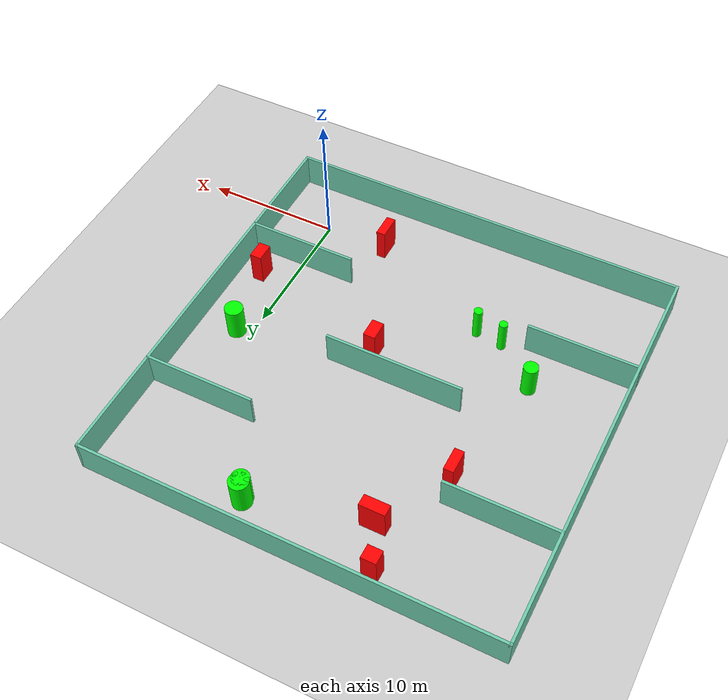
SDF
<sdf version="1.7">
 <world name="default">
  <light name="sun" type="directional">
   <pose>0 0 10 0 -0 0</pose>
   <diffuse>0.8 0.8 0.8 1</diffuse>
   <specular>0.2 0.2 0.2 1</specular>
   <attenuation>
    <range>1000</range>
    <constant>0.9</constant>
    <linear>0.01</linear>
    <quadratic>0.001</quadratic>
   </attenuation>
   <direction>-0.5 0.1 -0.9</direction>
   <spot><inner_angle>0</inner_angle><outer_angle>0</outer_angle><falloff>0</falloff></spot>
  </light>
  <model name="ground_plane">
   <static>1</static>
   <link name="link">
    <collision name="collision">
     <geometry><plane><normal>0 0 1</normal><size>100 100</size></plane></geometry>
     <surface>
      <contact><collide_bitmask>65535</collide_bitmask></contact>
      <friction><ode><mu>100</mu><mu2>50</mu2></ode></friction>
     </surface>
    </collision>
    <visual name="visual">
     <cast_shadows>0</cast_shadows>
     <geometry><plane><normal>0 0 1</normal><size>100 100</size></plane></geometry>
     <material>
      <script><uri>file://media/materials/scripts/gazebo.material</uri><name>Gazebo/Grey</name></script>
     </material>
    </visual>
   </link>
  </model>
  <gravity>0 0 -9.8</gravity>
  <magnetic_field>6e-06 2.3e-05 -4.2e-05</magnetic_field>
  <atmosphere type="adiabatic"/>
  <physics type="ode">
   <max_step_size>0.001</max_step_size>
   <real_time_factor>1</real_time_factor>
   <real_time_update_rate>1000</real_time_update_rate>
  </physics>
  <scene><ambient>0.4 0.4 0.4 1</ambient><background>0.7 0.7 0.7 1</background><shadows>1</shadows></scene>
  <spherical_coordinates>
   <surface_model>EARTH_WGS84</surface_model>
   <latitude_deg>0</latitude_deg>
   <longitude_deg>0</longitude_deg>
   <elevation>0</elevation>
   <heading_deg>0</heading_deg>
  </spherical_coordinates>
  <model name="my_base_walls">
   <link name="Wall_10">
    <collision name="Wall_10_Collision">
     <geometry><box><size>8.2 0.2 2.5</size></box></geometry>
     <pose>0 0 1.25 0 -0 0</pose>
    </collision>
    <visual name="Wall_10_Visual">
     <pose>0 0 1.25 0 -0 0</pose>
     <geometry><box><size>8.2 0.2 2.5</size></box></geometry>
     <material>
      <script><uri>file://media/materials/scripts/gazebo.material</uri><name>Gazebo/Grey</name></script>
      <ambient>0.435294 0.796078 0.67451 1</ambient>
     </material>
     <meta><layer>0</layer></meta>
    </visual>
    <pose>-11 -7 0 0 -0 0</pose>
   </link>
   <link name="Wall_12">
    <collision name="Wall_12_Collision">
     <geometry><box><size>8.2 0.2 2.5</size></box></geometry>
     <pose>0 0 1.25 0 -0 0</pose>
    </collision>
    <visual name="Wall_12_Visual">
     <pose>0 0 1.25 0 -0 0</pose>
     <geometry><box><size>8.2 0.2 2.5</size></box></geometry>
     <material>
      <script><uri>file://media/materials/scripts/gazebo.material</uri><name>Gazebo/Grey</name></script>
      <ambient>0.435294 0.796078 0.67451 1</ambient>
     </material>
     <meta><layer>0</layer></meta>
    </visual>
    <pose>-11 7 0 0 -0 0</pose>
   </link>
   <link name="Wall_14">
    <collision name="Wall_14_Collision">
     <geometry><box><size>8.2 0.2 2.5</size></box></geometry>
     <pose>0 0 1.25 0 -0 0</pose>
    </collision>
    <visual name="Wall_14_Visual">
     <pose>0 0 1.25 0 -0 0</pose>
     <geometry><box><size>8.2 0.2 2.5</size></box></geometry>
     <material>
      <script><uri>file://media/materials/scripts/gazebo.material</uri><name>Gazebo/Grey</name></script>
      <ambient>0.435294 0.796078 0.67451 1</ambient>
     </material>
     <meta><layer>0</layer></meta>
    </visual>
    <pose>11 7 0 0 -0 3.14159</pose>
   </link>
   <link name="Wall_16">
    <collision name="Wall_16_Collision">
     <geometry><box><size>10.2 0.2 2.5</size></box></geometry>
     <pose>0 0 1.25 0 -0 0</pose>
    </collision>
    <visual name="Wall_16_Visual">
     <pose>0 0 1.25 0 -0 0</pose>
     <geometry><box><size>10.2 0.2 2.5</size></box></geometry>
     <material>
      <script><uri>file://media/materials/scripts/gazebo.material</uri><name>Gazebo/Grey</name></script>
      <ambient>0.435294 0.796078 0.67451 1</ambient>
     </material>
     <meta><layer>0</layer></meta>
    </visual>
    <pose>0 0 0 0 -0 3.14159</pose>
   </link>
   <link name="Wall_2">
    <collision name="Wall_2_Collision">
     <geometry><box><size>30.2 0.2 2.5</size></box></geometry>
     <pose>0 0 1.25 0 -0 0</pose>
    </collision>
    <visual name="Wall_2_Visual">
     <pose>0 0 1.25 0 -0 0</pose>
     <geometry><box><size>30.2 0.2 2.5</size></box></geometry>
     <material>
      <script><uri>file://media/materials/scripts/gazebo.material</uri><name>Gazebo/Grey</name></script>
      <ambient>0.435294 0.796078 0.67451 1</ambient>
     </material>
     <meta><layer>0</layer></meta>
    </visual>
    <pose>0 -15 0 0 -0 3.14159</pose>
   </link>
   <link name="Wall_3">
    <collision name="Wall_3_Collision">
     <geometry><box><size>30.2 0.2 2.5</size></box></geometry>
     <pose>0 0 1.25 0 -0 0</pose>
    </collision>
    <visual name="Wall_3_Visual">
     <pose>0 0 1.25 0 -0 0</pose>
     <geometry><box><size>30.2 0.2 2.5</size></box></geometry>
     <material>
      <script><uri>file://media/materials/scripts/gazebo.material</uri><name>Gazebo/Grey</name></script>
      <ambient>0.435294 0.796078 0.67451 1</ambient>
     </material>
     <meta><layer>0</layer></meta>
    </visual>
    <pose>-15 0 0 0 -0 1.5708</pose>
   </link>
   <link name="Wall_4">
    <collision name="Wall_4_Collision">
     <geometry><box><size>30.2 0.2 2.5</size></box></geometry>
     <pose>0 0 1.25 0 -0 0</pose>
    </collision>
    <visual name="Wall_4_Visual">
     <pose>0 0 1.25 0 -0 0</pose>
     <geometry><box><size>30.2 0.2 2.5</size></box></geometry>
     <material>
      <script><uri>file://media/materials/scripts/gazebo.material</uri><name>Gazebo/Grey</name></script>
      <ambient>0.435294 0.796078 0.67451 1</ambient>
     </material>
     <meta><layer>0</layer></meta>
    </visual>
    <pose>0 15 0 0 -0 0</pose>
   </link>
   <link name="Wall_6">
    <collision name="Wall_6_Collision">
     <geometry><box><size>30.2 0.2 2.5</size></box></geometry>
     <pose>0 0 1.25 0 -0 0</pose>
    </collision>
    <visual name="Wall_6_Visual">
     <pose>0 0 1.25 0 -0 0</pose>
     <geometry><box><size>30.2 0.2 2.5</size></box></geometry>
     <material>
      <script><uri>file://media/materials/scripts/gazebo.material</uri><name>Gazebo/Grey</name></script>
      <ambient>0.435294 0.796078 0.67451 1</ambient>
     </material>
     <meta><layer>0</layer></meta>
    </visual>
    <pose>15 0 0 0 -0 1.5708</pose>
   </link>
   <link name="Wall_8">
    <collision name="Wall_8_Collision">
     <geometry><box><size>8.2 0.2 2.5</size></box></geometry>
     <pose>0 0 1.25 0 -0 0</pose>
    </collision>
    <visual name="Wall_8_Visual">
     <pose>0 0 1.25 0 -0 0</pose>
     <geometry><box><size>8.2 0.2 2.5</size></box></geometry>
     <material>
      <script><uri>file://media/materials/scripts/gazebo.material</uri><name>Gazebo/Grey</name></script>
      <ambient>0.435294 0.796078 0.67451 1</ambient>
     </material>
     <meta><layer>0</layer></meta>
    </visual>
    <pose>11 -7 0 0 -0 3.14159</pose>
   </link>
   <static>1</static>
   <pose>-11 11 0 0 -0 0</pose>
  </model>
  <model name="cylinder1">
   <static>1</static>
   <link name="link">
    <inertial>
     <mass>1</mass>
     <inertia><ixx>0.5</ixx><ixy>0</ixy><ixz>0</ixz><iyy>0.5</iyy><iyz>0</iyz><izz>1</izz></inertia>
    </inertial>
    <collision name="collision">
     <geometry><cylinder><radius>0.30802987781008945</radius><length>2.5</length></cylinder></geometry>
    </collision>
    <visual name="visual">
     <geometry><cylinder><radius>0.30802987781008945</radius><length>2.5</length></cylinder></geometry>
     <material>
      <ambient>0 1 0 1</ambient>
      <diffuse>0 1 0 1</diffuse>
      <specular>0.1 0.1 0.1 1</specular>
      <emissive>0 0 0 0</emissive>
     </material>
    </visual>
   </link>
   <pose>-16.348998755762835 4.653060358708766 1.25 0 0 0</pose>
  </model>
  <model name="cylinder2">
   <static>1</static>
   <link name="link">
    <inertial>
     <mass>1</mass>
     <inertia><ixx>0.5</ixx><ixy>0</ixy><ixz>0</ixz><iyy>0.5</iyy><iyz>0</iyz><izz>1</izz></inertia>
    </inertial>
    <collision name="collision">
     <geometry><cylinder><radius>0.6695631993839726</radius><length>2.5</length></cylinder></geometry>
    </collision>
    <visual name="visual">
     <geometry><cylinder><radius>0.6695631993839726</radius><length>2.5</length></cylinder></geometry>
     <material>
      <ambient>0 1 0 1</ambient>
      <diffuse>0 1 0 1</diffuse>
      <specular>0.1 0.1 0.1 1</specular>
      <emissive>0 0 0 0</emissive>
     </material>
    </visual>
   </link>
   <pose>1.0606903778616008 11.768981424106592 1.25 0 0 0</pose>
  </model>
  <model name="cylinder3">
   <static>1</static>
   <link name="link">
    <inertial>
     <mass>1</mass>
     <inertia><ixx>0.5</ixx><ixy>0</ixy><ixz>0</ixz><iyy>0.5</iyy><iyz>0</iyz><izz>1</izz></inertia>
    </inertial>
    <collision name="collision">
     <geometry><cylinder><radius>0.5301908469731065</radius><length>2.5</length></cylinder></geometry>
    </collision>
    <visual name="visual">
     <geometry><cylinder><radius>0.5301908469731065</radius><length>2.5</length></cylinder></geometry>
     <material>
      <ambient>0 1 0 1</ambient>
      <diffuse>0 1 0 1</diffuse>
      <specular>0.1 0.1 0.1 1</specular>
      <emissive>0 0 0 0</emissive>
     </material>
    </visual>
   </link>
   <pose>-19.48832069725085 7.279367192632762 1.25 0 0 0</pose>
  </model>
  <model name="cylinder4">
   <static>1</static>
   <link name="link">
    <inertial>
     <mass>1</mass>
     <inertia><ixx>0.5</ixx><ixy>0</ixy><ixz>0</ixz><iyy>0.5</iyy><iyz>0</iyz><izz>1</izz></inertia>
    </inertial>
    <collision name="collision">
     <geometry><cylinder><radius>0.32221584166283007</radius><length>2.5</length></cylinder></geometry>
    </collision>
    <visual name="visual">
     <geometry><cylinder><radius>0.32221584166283007</radius><length>2.5</length></cylinder></geometry>
     <material>
      <ambient>0 1 0 1</ambient>
      <diffuse>0 1 0 1</diffuse>
      <specular>0.1 0.1 0.1 1</specular>
      <emissive>0 0 0 0</emissive>
     </material>
    </visual>
   </link>
   <pose>-14.31523651282085 4.342432845200242 1.25 0 0 0</pose>
  </model>
  <model name="cylinder5">
   <static>1</static>
   <link name="link">
    <inertial>
     <mass>1</mass>
     <inertia><ixx>0.5</ixx><ixy>0</ixy><ixz>0</ixz><iyy>0.5</iyy><iyz>0</iyz><izz>1</izz></inertia>
    </inertial>
    <collision name="collision">
     <geometry><cylinder><radius>0.6401698204593398</radius><length>2.5</length></cylinder></geometry>
    </collision>
    <visual name="visual">
     <geometry><cylinder><radius>0.6401698204593398</radius><length>2.5</length></cylinder></geometry>
     <material>
      <ambient>0 1 0 1</ambient>
      <diffuse>0 1 0 1</diffuse>
      <specular>0.1 0.1 0.1 1</specular>
      <emissive>0 0 0 0</emissive>
     </material>
    </visual>
   </link>
   <pose>-6.5712054882546145 23.416411284743283 1.25 0 0 0</pose>
  </model>
  <model name="cylinder6">
   <static>1</static>
   <link name="link">
    <inertial>
     <mass>1</mass>
     <inertia><ixx>0.5</ixx><ixy>0</ixy><ixz>0</ixz><iyy>0.5</iyy><iyz>0</iyz><izz>1</izz></inertia>
    </inertial>
    <collision name="collision">
     <geometry><cylinder><radius>0.6957949590066564</radius><length>2.5</length></cylinder></geometry>
    </collision>
    <visual name="visual">
     <geometry><cylinder><radius>0.6957949590066564</radius><length>2.5</length></cylinder></geometry>
     <material>
      <ambient>0 1 0 1</ambient>
      <diffuse>0 1 0 1</diffuse>
      <specular>0.1 0.1 0.1 1</specular>
      <emissive>0 0 0 0</emissive>
     </material>
    </visual>
   </link>
   <pose>-6.604016317103499 23.69557123422524 1.25 0 0 0</pose>
  </model>
  <model name="box1">
   <static>1</static>
   <link name="link">
    <inertial>
     <mass>1</mass>
     <inertia><ixx>0.083</ixx><ixy>0</ixy><ixz>0</ixz><iyy>0.083</iyy><iyz>0</iyz><izz>0.083</izz></inertia>
    </inertial>
    <collision name="collision">
     <geometry><box><size>0.6625335633587748 1.7260749047940125 2.5</size></box></geometry>
    </collision>
    <visual name="visual">
     <geometry><box><size>0.6625335633587748 1.7260749047940125 2.5</size></box></geometry>
     <material>
      <ambient>1 0 0 1</ambient>
      <diffuse>1 0 0 1</diffuse>
      <specular>0.1 0.1 0.1 1</specular>
      <emissive>0 0 0 0</emissive>
     </material>
    </visual>
    <sensor name="my_contact" type="contact">
     <contact><collision>box_collision</collision><topic>__default_topic__</topic></contact>
    </sensor>
   </link>
   <pose>-4.838255298720778 -0.0975532868350899 1.25 0 0 0</pose>
  </model>
  <model name="box2">
   <static>1</static>
   <link name="link">
    <inertial>
     <mass>1</mass>
     <inertia><ixx>0.083</ixx><ixy>0</ixy><ixz>0</ixz><iyy>0.083</iyy><iyz>0</iyz><izz>0.083</izz></inertia>
    </inertial>
    <collision name="collision">
     <geometry><box><size>0.7122146749043899 1.7249581965221583 2.5</size></box></geometry>
    </collision>
    <visual name="visual">
     <geometry><box><size>0.7122146749043899 1.7249581965221583 2.5</size></box></geometry>
     <material>
      <ambient>1 0 0 1</ambient>
      <diffuse>1 0 0 1</diffuse>
      <specular>0.1 0.1 0.1 1</specular>
      <emissive>0 0 0 0</emissive>
     </material>
    </visual>
    <sensor name="my_contact" type="contact">
     <contact><collision>box_collision</collision><topic>__default_topic__</topic></contact>
    </sensor>
   </link>
   <pose>-17.951831104518654 16.279112626246736 1.25 0 0 0</pose>
  </model>
  <model name="box3">
   <static>1</static>
   <link name="link">
    <inertial>
     <mass>1</mass>
     <inertia><ixx>0.083</ixx><ixy>0</ixy><ixz>0</ixz><iyy>0.083</iyy><iyz>0</iyz><izz>0.083</izz></inertia>
    </inertial>
    <collision name="collision">
     <geometry><box><size>0.8637080437074371 1.3530714794414698 2.5</size></box></geometry>
    </collision>
    <visual name="visual">
     <geometry><box><size>0.8637080437074371 1.3530714794414698 2.5</size></box></geometry>
     <material>
      <ambient>1 0 0 1</ambient>
      <diffuse>1 0 0 1</diffuse>
      <specular>0.1 0.1 0.1 1</specular>
      <emissive>0 0 0 0</emissive>
     </material>
    </visual>
    <sensor name="my_contact" type="contact">
     <contact><collision>box_collision</collision><topic>__default_topic__</topic></contact>
    </sensor>
   </link>
   <pose>2.209167536156798 6.228925783764769 1.25 0 0 0</pose>
  </model>
  <model name="box4">
   <static>1</static>
   <link name="link">
    <inertial>
     <mass>1</mass>
     <inertia><ixx>0.083</ixx><ixy>0</ixy><ixz>0</ixz><iyy>0.083</iyy><iyz>0</iyz><izz>0.083</izz></inertia>
    </inertial>
    <collision name="collision">
     <geometry><box><size>0.8785923579753379 1.4283096356571408 2.5</size></box></geometry>
    </collision>
    <visual name="visual">
     <geometry><box><size>0.8785923579753379 1.4283096356571408 2.5</size></box></geometry>
     <material>
      <ambient>1 0 0 1</ambient>
      <diffuse>1 0 0 1</diffuse>
      <specular>0.1 0.1 0.1 1</specular>
      <emissive>0 0 0 0</emissive>
     </material>
    </visual>
    <sensor name="my_contact" type="contact">
     <contact><collision>box_collision</collision><topic>__default_topic__</topic></contact>
    </sensor>
   </link>
   <pose>-8.530478179251936 9.06725372452259 1.25 0 0 0</pose>
  </model>
  <model name="box5">
   <static>1</static>
   <link name="link">
    <inertial>
     <mass>1</mass>
     <inertia><ixx>0.083</ixx><ixy>0</ixy><ixz>0</ixz><iyy>0.083</iyy><iyz>0</iyz><izz>0.083</izz></inertia>
    </inertial>
    <collision name="collision">
     <geometry><box><size>1.0747932520850507 1.0120063031940794 2.5</size></box></geometry>
    </collision>
    <visual name="visual">
     <geometry><box><size>1.0747932520850507 1.0120063031940794 2.5</size></box></geometry>
     <material>
      <ambient>1 0 0 1</ambient>
      <diffuse>1 0 0 1</diffuse>
      <specular>0.1 0.1 0.1 1</specular>
      <emissive>0 0 0 0</emissive>
     </material>
    </visual>
    <sensor name="my_contact" type="contact">
     <contact><collision>box_collision</collision><topic>__default_topic__</topic></contact>
    </sensor>
   </link>
   <pose>-16.366045513852406 24.491048673225173 1.25 0 0 0</pose>
  </model>
  <model name="box6">
   <static>1</static>
   <link name="link">
    <inertial>
     <mass>1</mass>
     <inertia><ixx>0.083</ixx><ixy>0</ixy><ixz>0</ixz><iyy>0.083</iyy><iyz>0</iyz><izz>0.083</izz></inertia>
    </inertial>
    <collision name="collision">
     <geometry><box><size>1.8535550116276567 0.8325410759720724 2.5</size></box></geometry>
    </collision>
    <visual name="visual">
     <geometry><box><size>1.8535550116276567 0.8325410759720724 2.5</size></box></geometry>
     <material>
      <ambient>1 0 0 1</ambient>
      <diffuse>1 0 0 1</diffuse>
      <specular>0.1 0.1 0.1 1</specular>
      <emissive>0 0 0 0</emissive>
     </material>
    </visual>
    <sensor name="my_contact" type="contact">
     <contact><collision>box_collision</collision><topic>__default_topic__</topic></contact>
    </sensor>
   </link>
   <pose>-14.967601687460292 21.42548082766963 1.25 0 0 0</pose>
  </model>
 </world>
</sdf>
